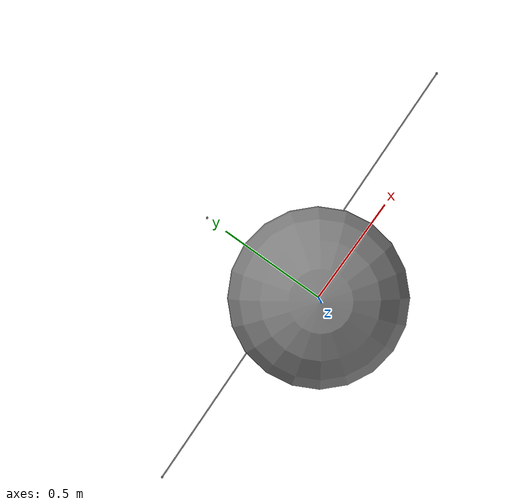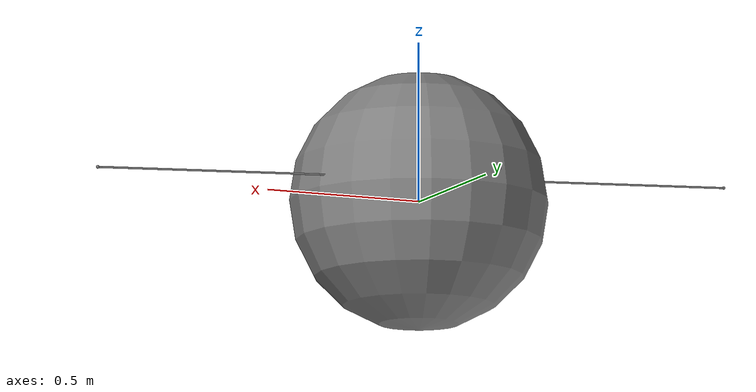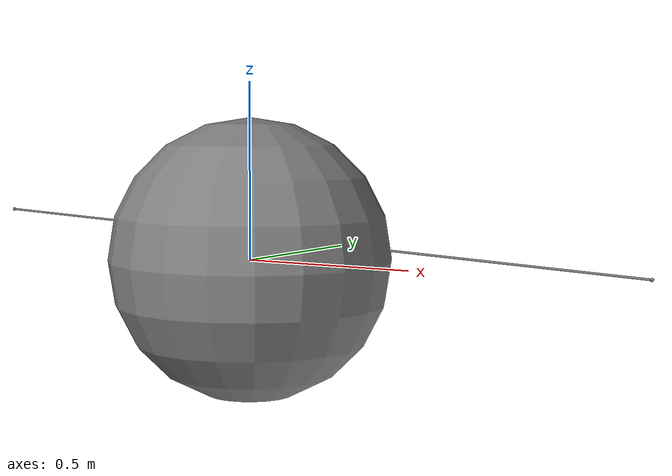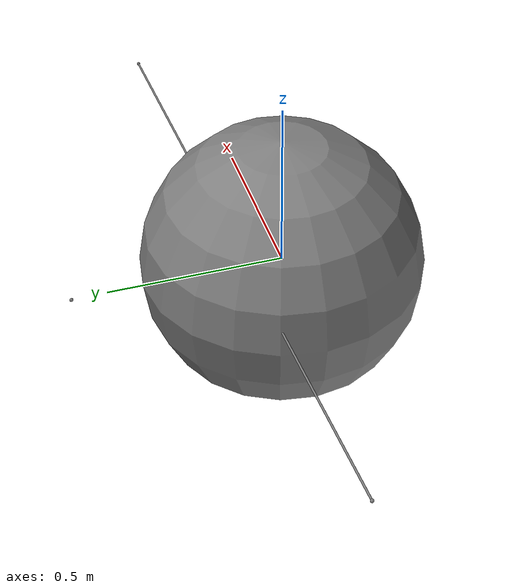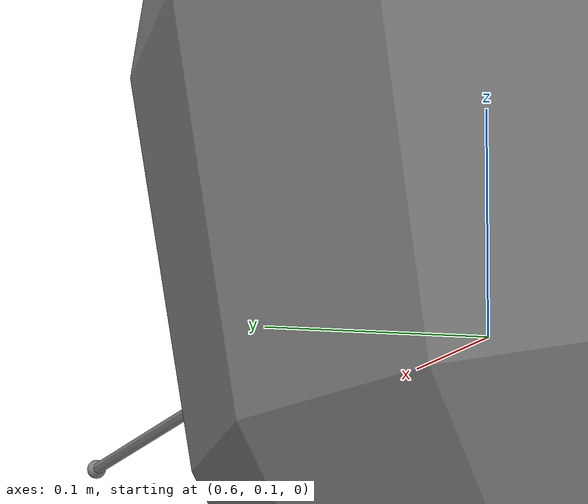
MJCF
<mujoco><compiler angle="radian"/><option timestep=".001" gravity="0 0 0"><flag constraint="disable"/></option><worldbody><geom name="wrap" type="sphere" size=".4" contype="0" conaffinity="0"/><site name="start" pos="-1 .1 .1"/><site name="side" pos="0 .6 0"/><body pos="1 .1 0.0"><joint type="slide" axis="0 1 0" damping=".03" armature=".1"/><joint axis="0 0 1" armature=".1"/><inertial pos=".1 0 .05" mass="1.4" diaginertia=".2 .3 .4"/><site name="end0" pos=".1 .05 0"/></body></worldbody><tendon><spatial stiffness=".2" damping=".01" springlength="1.4 1.6"><site site="start"/><geom geom="wrap" sidesite="side"/><site site="end0"/></spatial></tendon></mujoco>
